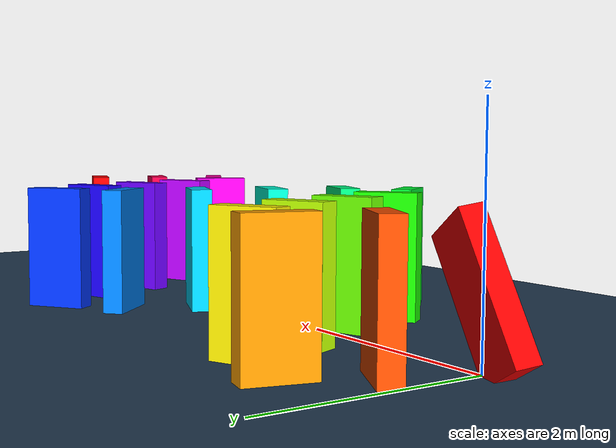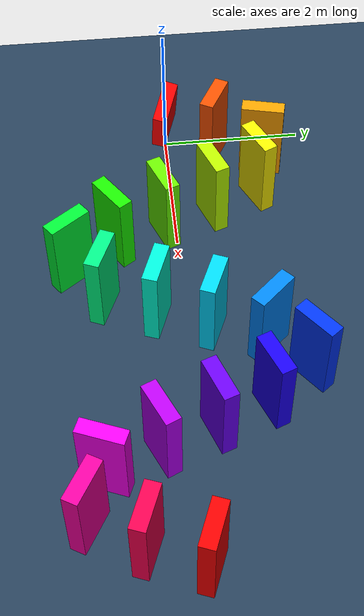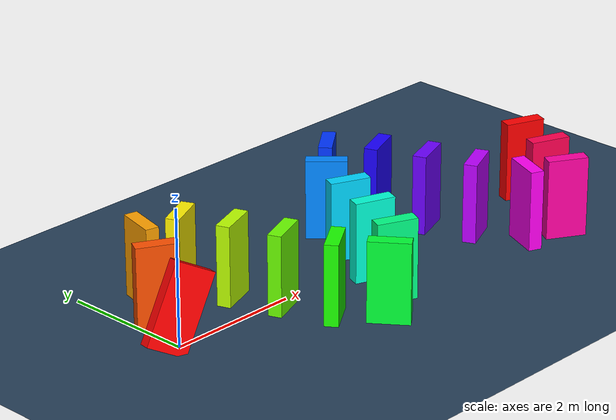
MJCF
<mujoco>
  <visual>
    <headlight diffuse="0.6 0.6 0.6" ambient="0.1 0.1 0.1" specular="0 0 0"/>
    <rgba haze="0.15 0.25 0.35 1"/>
    <global azimuth="120" elevation="-20"/>
  </visual>
  <asset>
    <texture type="skybox" builtin="gradient" rgb1="0.3 0.5 0.7" rgb2="0 0 0" width="512" height="3072"/>
    <texture type="2d" name="groundplane" builtin="checker" mark="edge" rgb1="0.2 0.3 0.4" rgb2="0.1 0.2 0.3" markrgb="0.8 0.8 0.8" width="300" height="300"/>
    <material name="groundplane" texture="groundplane" texuniform="true" texrepeat="5 5" reflectance="0.2"/>
  </asset>
  <worldbody>
    <light pos="0 0 1.5" dir="0 0 -1" directional="true"/>
    <geom name="floor" size="0 0 0.05" type="plane" material="groundplane"/>
    <body name="trigger" pos="0.0000 0.0000 0.5767" euler="0 28.0 69.1">
      <geom type="box" size="0.1000 0.3000 0.6000" rgba="1.000 0.000 0.000 1"/>
      <freejoint/>
    </body>
    <body name="domino_001" pos="0.2673 0.7007 0.6000" euler="0 0.0 61.6">
      <geom type="box" size="0.1000 0.3000 0.6000" rgba="1.000 0.316 0.000 1"/>
      <freejoint/>
    </body>
    <body name="domino_002" pos="0.6227 1.3580 0.6000" euler="0 0.0 -13.4">
      <geom type="box" size="0.1000 0.3000 0.6000" rgba="1.000 0.632 0.000 1"/>
      <freejoint/>
    </body>
    <body name="domino_003" pos="1.2064 1.2184 0.6000" euler="0 0.0 -64.8">
      <geom type="box" size="0.1000 0.3000 0.6000" rgba="1.000 0.947 0.000 1"/>
      <freejoint/>
    </body>
    <body name="domino_004" pos="1.5251 0.5406 0.6000" euler="0 0.0 -69.5">
      <geom type="box" size="0.1000 0.3000 0.6000" rgba="0.737 1.000 0.000 1"/>
      <freejoint/>
    </body>
    <body name="domino_005" pos="1.7874 -0.1620 0.6000" euler="0 0.0 -68.4">
      <geom type="box" size="0.1000 0.3000 0.6000" rgba="0.421 1.000 0.000 1"/>
      <freejoint/>
    </body>
    <body name="domino_006" pos="2.0634 -0.8592 0.6000" euler="0 0.0 -55.6">
      <geom type="box" size="0.1000 0.3000 0.6000" rgba="0.105 1.000 0.000 1"/>
      <freejoint/>
    </body>
    <body name="domino_007" pos="2.4810 -1.4697 0.6000" euler="0 0.0 36.7">
      <geom type="box" size="0.1000 0.3000 0.6000" rgba="0.000 1.000 0.211 1"/>
      <freejoint/>
    </body>
    <body name="domino_008" pos="3.0197 -1.0685 0.6000" euler="0 0.0 66.8">
      <geom type="box" size="0.1000 0.3000 0.6000" rgba="0.000 1.000 0.526 1"/>
      <freejoint/>
    </body>
    <body name="domino_009" pos="3.3150 -0.3796 0.6000" euler="0 0.0 69.7">
      <geom type="box" size="0.1000 0.3000 0.6000" rgba="0.000 1.000 0.842 1"/>
      <freejoint/>
    </body>
    <body name="domino_010" pos="3.5754 0.3238 0.6000" euler="0 0.0 67.3">
      <geom type="box" size="0.1000 0.3000 0.6000" rgba="0.000 0.842 1.000 1"/>
      <freejoint/>
    </body>
    <body name="domino_011" pos="3.8647 1.0154 0.6000" euler="0 0.0 43.0">
      <geom type="box" size="0.1000 0.3000 0.6000" rgba="0.000 0.526 1.000 1"/>
      <freejoint/>
    </body>
    <body name="domino_012" pos="4.3755 1.4923 0.6000" euler="0 0.0 -52.3">
      <geom type="box" size="0.1000 0.3000 0.6000" rgba="0.000 0.211 1.000 1"/>
      <freejoint/>
    </body>
    <body name="domino_013" pos="4.8235 0.9135 0.6000" euler="0 0.0 -68.1">
      <geom type="box" size="0.1000 0.3000 0.6000" rgba="0.105 0.000 1.000 1"/>
      <freejoint/>
    </body>
    <body name="domino_014" pos="5.1034 0.2179 0.6000" euler="0 0.0 -69.6">
      <geom type="box" size="0.1000 0.3000 0.6000" rgba="0.421 0.000 1.000 1"/>
      <freejoint/>
    </body>
    <body name="domino_015" pos="5.3647 -0.4851 0.6000" euler="0 0.0 -65.6">
      <geom type="box" size="0.1000 0.3000 0.6000" rgba="0.737 0.000 1.000 1"/>
      <freejoint/>
    </body>
    <body name="domino_016" pos="5.6742 -1.1675 0.6000" euler="0 0.0 -22.2">
      <geom type="box" size="0.1000 0.3000 0.6000" rgba="1.000 0.000 0.947 1"/>
      <freejoint/>
    </body>
    <body name="domino_017" pos="6.2480 -1.4015 0.6000" euler="0 0.0 60.0">
      <geom type="box" size="0.1000 0.3000 0.6000" rgba="1.000 0.000 0.632 1"/>
      <freejoint/>
    </body>
    <body name="domino_018" pos="6.6211 -0.7557 0.6000" euler="0 0.0 68.9">
      <geom type="box" size="0.1000 0.3000 0.6000" rgba="1.000 0.000 0.316 1"/>
      <freejoint/>
    </body>
    <body name="domino_019" pos="6.8910 -0.0560 0.6000" euler="0 0.0 68.9">
      <geom type="box" size="0.1000 0.3000 0.6000" rgba="1.000 0.000 0.000 1"/>
      <freejoint/>
    </body>
  </worldbody>
</mujoco>
